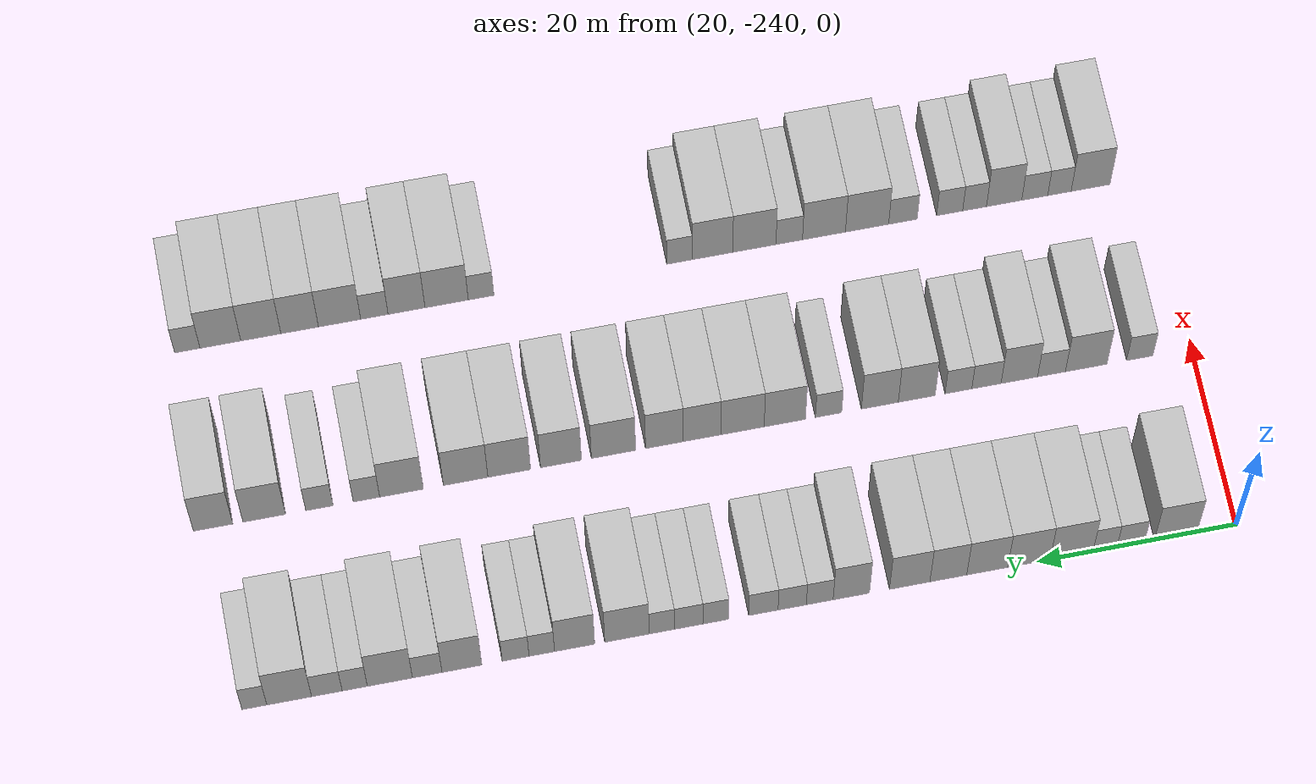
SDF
<sdf version="1.6">
 <world name="default">
  <model name="building_1">
   <static>1</static>
   <pose>25.0000 -233.8589 0 0.000000 0.000000 0.000000</pose>
   <link name="link">
    <pose>0 0 4.50 0 0 0</pose>
    <collision name="collision"><geometry><box><size>10.0000 4.2823 9.0000</size></box></geometry></collision>
    <visual name="visual">
     <cast_shadows>0</cast_shadows>
     <geometry><box><size>10.0000 4.2823 9.0000</size></box></geometry>
     <material>
      <script>
       <uri>model://HANNAS_wall/materials/scripts</uri>
       <uri>model://HANNAS_wall/materials/textures</uri>
       <name>vrc/HANNAS_wall</name>
      </script>
     </material>
    </visual>
   </link>
  </model>
  <model name="building_2">
   <static>1</static>
   <pose>25.0000 -229.3313 0 0.000000 0.000000 0.000000</pose>
   <link name="link">
    <pose>0 0 3.00 0 0 0</pose>
    <collision name="collision"><geometry><box><size>10.0000 2.7728 6.0000</size></box></geometry></collision>
    <visual name="visual">
     <cast_shadows>0</cast_shadows>
     <geometry><box><size>10.0000 2.7728 6.0000</size></box></geometry>
     <material>
      <script>
       <uri>model://HANNAS_wall/materials/scripts</uri>
       <uri>model://HANNAS_wall/materials/textures</uri>
       <name>vrc/HANNAS_wall</name>
      </script>
     </material>
    </visual>
   </link>
  </model>
  <model name="building_3">
   <static>1</static>
   <pose>25.0000 -226.7436 0 0.000000 0.000000 0.000000</pose>
   <link name="link">
    <pose>0 0 3.00 0 0 0</pose>
    <collision name="collision"><geometry><box><size>10.0000 2.4027 6.0000</size></box></geometry></collision>
    <visual name="visual">
     <cast_shadows>0</cast_shadows>
     <geometry><box><size>10.0000 2.4027 6.0000</size></box></geometry>
     <material>
      <script>
       <uri>model://HANNAS_wall/materials/scripts</uri>
       <uri>model://HANNAS_wall/materials/textures</uri>
       <name>vrc/HANNAS_wall</name>
      </script>
     </material>
    </visual>
   </link>
  </model>
  <model name="building_4">
   <static>1</static>
   <pose>25.0000 -223.3884 0 0.000000 0.000000 0.000000</pose>
   <link name="link">
    <pose>0 0 4.50 0 0 0</pose>
    <collision name="collision"><geometry><box><size>10.0000 4.3077 9.0000</size></box></geometry></collision>
    <visual name="visual">
     <cast_shadows>0</cast_shadows>
     <geometry><box><size>10.0000 4.3077 9.0000</size></box></geometry>
     <material>
      <script>
       <uri>model://HANNAS_wall/materials/scripts</uri>
       <uri>model://HANNAS_wall/materials/textures</uri>
       <name>vrc/HANNAS_wall</name>
      </script>
     </material>
    </visual>
   </link>
  </model>
  <model name="building_5">
   <static>1</static>
   <pose>25.0000 -219.1141 0 0.000000 0.000000 0.000000</pose>
   <link name="link">
    <pose>0 0 4.50 0 0 0</pose>
    <collision name="collision"><geometry><box><size>10.0000 4.2409 9.0000</size></box></geometry></collision>
    <visual name="visual">
     <cast_shadows>0</cast_shadows>
     <geometry><box><size>10.0000 4.2409 9.0000</size></box></geometry>
     <material>
      <script>
       <uri>model://HANNAS_wall/materials/scripts</uri>
       <uri>model://HANNAS_wall/materials/textures</uri>
       <name>vrc/HANNAS_wall</name>
      </script>
     </material>
    </visual>
   </link>
  </model>
  <model name="building_6">
   <static>1</static>
   <pose>25.0000 -214.9494 0 0.000000 0.000000 0.000000</pose>
   <link name="link">
    <pose>0 0 4.50 0 0 0</pose>
    <collision name="collision"><geometry><box><size>10.0000 4.0884 9.0000</size></box></geometry></collision>
    <visual name="visual">
     <cast_shadows>0</cast_shadows>
     <geometry><box><size>10.0000 4.0884 9.0000</size></box></geometry>
     <material>
      <script>
       <uri>model://HANNAS_wall/materials/scripts</uri>
       <uri>model://HANNAS_wall/materials/textures</uri>
       <name>vrc/HANNAS_wall</name>
      </script>
     </material>
    </visual>
   </link>
  </model>
  <model name="building_7">
   <static>1</static>
   <pose>25.0000 -211.0635 0 0.000000 0.000000 0.000000</pose>
   <link name="link">
    <pose>0 0 4.50 0 0 0</pose>
    <collision name="collision"><geometry><box><size>10.0000 3.6835 9.0000</size></box></geometry></collision>
    <visual name="visual">
     <cast_shadows>0</cast_shadows>
     <geometry><box><size>10.0000 3.6835 9.0000</size></box></geometry>
     <material>
      <script>
       <uri>model://HANNAS_wall/materials/scripts</uri>
       <uri>model://HANNAS_wall/materials/textures</uri>
       <name>vrc/HANNAS_wall</name>
      </script>
     </material>
    </visual>
   </link>
  </model>
  <model name="building_8">
   <static>1</static>
   <pose>25.0000 -207.2056 0 0.000000 0.000000 0.000000</pose>
   <link name="link">
    <pose>0 0 4.50 0 0 0</pose>
    <collision name="collision"><geometry><box><size>10.0000 4.0324 9.0000</size></box></geometry></collision>
    <visual name="visual">
     <cast_shadows>0</cast_shadows>
     <geometry><box><size>10.0000 4.0324 9.0000</size></box></geometry>
     <material>
      <script>
       <uri>model://HANNAS_wall/materials/scripts</uri>
       <uri>model://HANNAS_wall/materials/textures</uri>
       <name>vrc/HANNAS_wall</name>
      </script>
     </material>
    </visual>
   </link>
  </model>
  <model name="building_9">
   <static>1</static>
   <pose>25.0000 -201.3807 0 0.000000 0.000000 0.000000</pose>
   <link name="link">
    <pose>0 0 4.50 0 0 0</pose>
    <collision name="collision"><geometry><box><size>10.0000 3.6173 9.0000</size></box></geometry></collision>
    <visual name="visual">
     <cast_shadows>0</cast_shadows>
     <geometry><box><size>10.0000 3.6173 9.0000</size></box></geometry>
     <material>
      <script>
       <uri>model://HANNAS_wall/materials/scripts</uri>
       <uri>model://HANNAS_wall/materials/textures</uri>
       <name>vrc/HANNAS_wall</name>
      </script>
     </material>
    </visual>
   </link>
  </model>
  <model name="building_10">
   <static>1</static>
   <pose>25.0000 -198.2366 0 0.000000 0.000000 0.000000</pose>
   <link name="link">
    <pose>0 0 3.00 0 0 0</pose>
    <collision name="collision"><geometry><box><size>10.0000 2.6708 6.0000</size></box></geometry></collision>
    <visual name="visual">
     <cast_shadows>0</cast_shadows>
     <geometry><box><size>10.0000 2.6708 6.0000</size></box></geometry>
     <material>
      <script>
       <uri>model://HANNAS_wall/materials/scripts</uri>
       <uri>model://HANNAS_wall/materials/textures</uri>
       <name>vrc/HANNAS_wall</name>
      </script>
     </material>
    </visual>
   </link>
  </model>
  <model name="building_11">
   <static>1</static>
   <pose>25.0000 -195.4978 0 0.000000 0.000000 0.000000</pose>
   <link name="link">
    <pose>0 0 3.00 0 0 0</pose>
    <collision name="collision"><geometry><box><size>10.0000 2.8070 6.0000</size></box></geometry></collision>
    <visual name="visual">
     <cast_shadows>0</cast_shadows>
     <geometry><box><size>10.0000 2.8070 6.0000</size></box></geometry>
     <material>
      <script>
       <uri>model://HANNAS_wall/materials/scripts</uri>
       <uri>model://HANNAS_wall/materials/textures</uri>
       <name>vrc/HANNAS_wall</name>
      </script>
     </material>
    </visual>
   </link>
  </model>
  <model name="building_12">
   <static>1</static>
   <pose>25.0000 -192.6402 0 0.000000 0.000000 0.000000</pose>
   <link name="link">
    <pose>0 0 3.00 0 0 0</pose>
    <collision name="collision"><geometry><box><size>10.0000 2.9082 6.0000</size></box></geometry></collision>
    <visual name="visual">
     <cast_shadows>0</cast_shadows>
     <geometry><box><size>10.0000 2.9082 6.0000</size></box></geometry>
     <material>
      <script>
       <uri>model://HANNAS_wall/materials/scripts</uri>
       <uri>model://HANNAS_wall/materials/textures</uri>
       <name>vrc/HANNAS_wall</name>
      </script>
     </material>
    </visual>
   </link>
  </model>
  <model name="building_13">
   <static>1</static>
   <pose>25.0000 -187.9117 0 0.000000 0.000000 0.000000</pose>
   <link name="link">
    <pose>0 0 3.00 0 0 0</pose>
    <collision name="collision"><geometry><box><size>10.0000 2.5488 6.0000</size></box></geometry></collision>
    <visual name="visual">
     <cast_shadows>0</cast_shadows>
     <geometry><box><size>10.0000 2.5488 6.0000</size></box></geometry>
     <material>
      <script>
       <uri>model://HANNAS_wall/materials/scripts</uri>
       <uri>model://HANNAS_wall/materials/textures</uri>
       <name>vrc/HANNAS_wall</name>
      </script>
     </material>
    </visual>
   </link>
  </model>
  <model name="building_14">
   <static>1</static>
   <pose>25.0000 -185.2370 0 0.000000 0.000000 0.000000</pose>
   <link name="link">
    <pose>0 0 3.00 0 0 0</pose>
    <collision name="collision"><geometry><box><size>10.0000 2.8006 6.0000</size></box></geometry></collision>
    <visual name="visual">
     <cast_shadows>0</cast_shadows>
     <geometry><box><size>10.0000 2.8006 6.0000</size></box></geometry>
     <material>
      <script>
       <uri>model://HANNAS_wall/materials/scripts</uri>
       <uri>model://HANNAS_wall/materials/textures</uri>
       <name>vrc/HANNAS_wall</name>
      </script>
     </material>
    </visual>
   </link>
  </model>
  <model name="building_15">
   <static>1</static>
   <pose>25.0000 -182.5791 0 0.000000 0.000000 0.000000</pose>
   <link name="link">
    <pose>0 0 3.00 0 0 0</pose>
    <collision name="collision"><geometry><box><size>10.0000 2.5152 6.0000</size></box></geometry></collision>
    <visual name="visual">
     <cast_shadows>0</cast_shadows>
     <geometry><box><size>10.0000 2.5152 6.0000</size></box></geometry>
     <material>
      <script>
       <uri>model://HANNAS_wall/materials/scripts</uri>
       <uri>model://HANNAS_wall/materials/textures</uri>
       <name>vrc/HANNAS_wall</name>
      </script>
     </material>
    </visual>
   </link>
  </model>
  <model name="building_16">
   <static>1</static>
   <pose>25.0000 -179.1273 0 0.000000 0.000000 0.000000</pose>
   <link name="link">
    <pose>0 0 4.50 0 0 0</pose>
    <collision name="collision"><geometry><box><size>10.0000 4.3885 9.0000</size></box></geometry></collision>
    <visual name="visual">
     <cast_shadows>0</cast_shadows>
     <geometry><box><size>10.0000 4.3885 9.0000</size></box></geometry>
     <material>
      <script>
       <uri>model://HANNAS_wall/materials/scripts</uri>
       <uri>model://HANNAS_wall/materials/textures</uri>
       <name>vrc/HANNAS_wall</name>
      </script>
     </material>
    </visual>
   </link>
  </model>
  <model name="building_17">
   <static>1</static>
   <pose>25.0000 -173.9559 0 0.000000 0.000000 0.000000</pose>
   <link name="link">
    <pose>0 0 4.50 0 0 0</pose>
    <collision name="collision"><geometry><box><size>10.0000 3.9544 9.0000</size></box></geometry></collision>
    <visual name="visual">
     <cast_shadows>0</cast_shadows>
     <geometry><box><size>10.0000 3.9544 9.0000</size></box></geometry>
     <material>
      <script>
       <uri>model://HANNAS_wall/materials/scripts</uri>
       <uri>model://HANNAS_wall/materials/textures</uri>
       <name>vrc/HANNAS_wall</name>
      </script>
     </material>
    </visual>
   </link>
  </model>
  <model name="building_18">
   <static>1</static>
   <pose>25.0000 -170.7183 0 0.000000 0.000000 0.000000</pose>
   <link name="link">
    <pose>0 0 3.00 0 0 0</pose>
    <collision name="collision"><geometry><box><size>10.0000 2.5207 6.0000</size></box></geometry></collision>
    <visual name="visual">
     <cast_shadows>0</cast_shadows>
     <geometry><box><size>10.0000 2.5207 6.0000</size></box></geometry>
     <material>
      <script>
       <uri>model://HANNAS_wall/materials/scripts</uri>
       <uri>model://HANNAS_wall/materials/textures</uri>
       <name>vrc/HANNAS_wall</name>
      </script>
     </material>
    </visual>
   </link>
  </model>
  <model name="building_19">
   <static>1</static>
   <pose>25.0000 -168.1359 0 0.000000 0.000000 0.000000</pose>
   <link name="link">
    <pose>0 0 3.00 0 0 0</pose>
    <collision name="collision"><geometry><box><size>10.0000 2.6441 6.0000</size></box></geometry></collision>
    <visual name="visual">
     <cast_shadows>0</cast_shadows>
     <geometry><box><size>10.0000 2.6441 6.0000</size></box></geometry>
     <material>
      <script>
       <uri>model://HANNAS_wall/materials/scripts</uri>
       <uri>model://HANNAS_wall/materials/textures</uri>
       <name>vrc/HANNAS_wall</name>
      </script>
     </material>
    </visual>
   </link>
  </model>
  <model name="building_20">
   <static>1</static>
   <pose>25.0000 -162.8508 0 0.000000 0.000000 0.000000</pose>
   <link name="link">
    <pose>0 0 4.50 0 0 0</pose>
    <collision name="collision"><geometry><box><size>10.0000 3.9261 9.0000</size></box></geometry></collision>
    <visual name="visual">
     <cast_shadows>0</cast_shadows>
     <geometry><box><size>10.0000 3.9261 9.0000</size></box></geometry>
     <material>
      <script>
       <uri>model://HANNAS_wall/materials/scripts</uri>
       <uri>model://HANNAS_wall/materials/textures</uri>
       <name>vrc/HANNAS_wall</name>
      </script>
     </material>
    </visual>
   </link>
  </model>
  <model name="building_21">
   <static>1</static>
   <pose>25.0000 -159.4385 0 0.000000 0.000000 0.000000</pose>
   <link name="link">
    <pose>0 0 3.00 0 0 0</pose>
    <collision name="collision"><geometry><box><size>10.0000 2.8985 6.0000</size></box></geometry></collision>
    <visual name="visual">
     <cast_shadows>0</cast_shadows>
     <geometry><box><size>10.0000 2.8985 6.0000</size></box></geometry>
     <material>
      <script>
       <uri>model://HANNAS_wall/materials/scripts</uri>
       <uri>model://HANNAS_wall/materials/textures</uri>
       <name>vrc/HANNAS_wall</name>
      </script>
     </material>
    </visual>
   </link>
  </model>
  <model name="building_22">
   <static>1</static>
   <pose>25.0000 -155.7770 0 0.000000 0.000000 0.000000</pose>
   <link name="link">
    <pose>0 0 4.50 0 0 0</pose>
    <collision name="collision"><geometry><box><size>10.0000 4.4245 9.0000</size></box></geometry></collision>
    <visual name="visual">
     <cast_shadows>0</cast_shadows>
     <geometry><box><size>10.0000 4.4245 9.0000</size></box></geometry>
     <material>
      <script>
       <uri>model://HANNAS_wall/materials/scripts</uri>
       <uri>model://HANNAS_wall/materials/textures</uri>
       <name>vrc/HANNAS_wall</name>
      </script>
     </material>
    </visual>
   </link>
  </model>
  <model name="building_23">
   <static>1</static>
   <pose>25.0000 -152.3275 0 0.000000 0.000000 0.000000</pose>
   <link name="link">
    <pose>0 0 3.00 0 0 0</pose>
    <collision name="collision"><geometry><box><size>10.0000 2.4743 6.0000</size></box></geometry></collision>
    <visual name="visual">
     <cast_shadows>0</cast_shadows>
     <geometry><box><size>10.0000 2.4743 6.0000</size></box></geometry>
     <material>
      <script>
       <uri>model://HANNAS_wall/materials/scripts</uri>
       <uri>model://HANNAS_wall/materials/textures</uri>
       <name>vrc/HANNAS_wall</name>
      </script>
     </material>
    </visual>
   </link>
  </model>
  <model name="building_24">
   <static>1</static>
   <pose>25.0000 -149.5923 0 0.000000 0.000000 0.000000</pose>
   <link name="link">
    <pose>0 0 3.00 0 0 0</pose>
    <collision name="collision"><geometry><box><size>10.0000 2.9961 6.0000</size></box></geometry></collision>
    <visual name="visual">
     <cast_shadows>0</cast_shadows>
     <geometry><box><size>10.0000 2.9961 6.0000</size></box></geometry>
     <material>
      <script>
       <uri>model://HANNAS_wall/materials/scripts</uri>
       <uri>model://HANNAS_wall/materials/textures</uri>
       <name>vrc/HANNAS_wall</name>
      </script>
     </material>
    </visual>
   </link>
  </model>
  <model name="building_25">
   <static>1</static>
   <pose>25.0000 -145.9034 0 0.000000 0.000000 0.000000</pose>
   <link name="link">
    <pose>0 0 4.50 0 0 0</pose>
    <collision name="collision"><geometry><box><size>10.0000 4.3817 9.0000</size></box></geometry></collision>
    <visual name="visual">
     <cast_shadows>0</cast_shadows>
     <geometry><box><size>10.0000 4.3817 9.0000</size></box></geometry>
     <material>
      <script>
       <uri>model://HANNAS_wall/materials/scripts</uri>
       <uri>model://HANNAS_wall/materials/textures</uri>
       <name>vrc/HANNAS_wall</name>
      </script>
     </material>
    </visual>
   </link>
  </model>
  <model name="building_26">
   <static>1</static>
   <pose>25.0000 -142.4988 0 0.000000 0.000000 0.000000</pose>
   <link name="link">
    <pose>0 0 3.00 0 0 0</pose>
    <collision name="collision"><geometry><box><size>10.0000 2.4275 6.0000</size></box></geometry></collision>
    <visual name="visual">
     <cast_shadows>0</cast_shadows>
     <geometry><box><size>10.0000 2.4275 6.0000</size></box></geometry>
     <material>
      <script>
       <uri>model://HANNAS_wall/materials/scripts</uri>
       <uri>model://HANNAS_wall/materials/textures</uri>
       <name>vrc/HANNAS_wall</name>
      </script>
     </material>
    </visual>
   </link>
  </model>
  <model name="building_128">
   <static>1</static>
   <pose>44.0000 -234.6585 0 0.000000 0.000000 0.000000</pose>
   <link name="link">
    <pose>0 0 3.00 0 0 0</pose>
    <collision name="collision"><geometry><box><size>10.0000 2.6829 6.0000</size></box></geometry></collision>
    <visual name="visual">
     <cast_shadows>0</cast_shadows>
     <geometry><box><size>10.0000 2.6829 6.0000</size></box></geometry>
     <material>
      <script>
       <uri>model://HANNAS_wall/materials/scripts</uri>
       <uri>model://HANNAS_wall/materials/textures</uri>
       <name>vrc/HANNAS_wall</name>
      </script>
     </material>
    </visual>
   </link>
  </model>
  <model name="building_129">
   <static>1</static>
   <pose>44.0000 -229.2019 0 0.000000 0.000000 0.000000</pose>
   <link name="link">
    <pose>0 0 4.50 0 0 0</pose>
    <collision name="collision"><geometry><box><size>10.0000 4.2305 9.0000</size></box></geometry></collision>
    <visual name="visual">
     <cast_shadows>0</cast_shadows>
     <geometry><box><size>10.0000 4.2305 9.0000</size></box></geometry>
     <material>
      <script>
       <uri>model://HANNAS_wall/materials/scripts</uri>
       <uri>model://HANNAS_wall/materials/textures</uri>
       <name>vrc/HANNAS_wall</name>
      </script>
     </material>
    </visual>
   </link>
  </model>
  <model name="building_130">
   <static>1</static>
   <pose>44.0000 -225.6706 0 0.000000 0.000000 0.000000</pose>
   <link name="link">
    <pose>0 0 3.00 0 0 0</pose>
    <collision name="collision"><geometry><box><size>10.0000 2.8320 6.0000</size></box></geometry></collision>
    <visual name="visual">
     <cast_shadows>0</cast_shadows>
     <geometry><box><size>10.0000 2.8320 6.0000</size></box></geometry>
     <material>
      <script>
       <uri>model://HANNAS_wall/materials/scripts</uri>
       <uri>model://HANNAS_wall/materials/textures</uri>
       <name>vrc/HANNAS_wall</name>
      </script>
     </material>
    </visual>
   </link>
  </model>
  <model name="building_131">
   <static>1</static>
   <pose>44.0000 -222.3912 0 0.000000 0.000000 0.000000</pose>
   <link name="link">
    <pose>0 0 4.50 0 0 0</pose>
    <collision name="collision"><geometry><box><size>10.0000 3.7268 9.0000</size></box></geometry></collision>
    <visual name="visual">
     <cast_shadows>0</cast_shadows>
     <geometry><box><size>10.0000 3.7268 9.0000</size></box></geometry>
     <material>
      <script>
       <uri>model://HANNAS_wall/materials/scripts</uri>
       <uri>model://HANNAS_wall/materials/textures</uri>
       <name>vrc/HANNAS_wall</name>
      </script>
     </material>
    </visual>
   </link>
  </model>
  <model name="building_132">
   <static>1</static>
   <pose>44.0000 -219.0440 0 0.000000 0.000000 0.000000</pose>
   <link name="link">
    <pose>0 0 3.00 0 0 0</pose>
    <collision name="collision"><geometry><box><size>10.0000 2.9677 6.0000</size></box></geometry></collision>
    <visual name="visual">
     <cast_shadows>0</cast_shadows>
     <geometry><box><size>10.0000 2.9677 6.0000</size></box></geometry>
     <material>
      <script>
       <uri>model://HANNAS_wall/materials/scripts</uri>
       <uri>model://HANNAS_wall/materials/textures</uri>
       <name>vrc/HANNAS_wall</name>
      </script>
     </material>
    </visual>
   </link>
  </model>
  <model name="building_133">
   <static>1</static>
   <pose>44.0000 -216.2031 0 0.000000 0.000000 0.000000</pose>
   <link name="link">
    <pose>0 0 3.00 0 0 0</pose>
    <collision name="collision"><geometry><box><size>10.0000 2.7142 6.0000</size></box></geometry></collision>
    <visual name="visual">
     <cast_shadows>0</cast_shadows>
     <geometry><box><size>10.0000 2.7142 6.0000</size></box></geometry>
     <material>
      <script>
       <uri>model://HANNAS_wall/materials/scripts</uri>
       <uri>model://HANNAS_wall/materials/textures</uri>
       <name>vrc/HANNAS_wall</name>
      </script>
     </material>
    </visual>
   </link>
  </model>
  <model name="building_134">
   <static>1</static>
   <pose>44.0000 -211.9766 0 0.000000 0.000000 0.000000</pose>
   <link name="link">
    <pose>0 0 4.50 0 0 0</pose>
    <collision name="collision"><geometry><box><size>10.0000 3.7388 9.0000</size></box></geometry></collision>
    <visual name="visual">
     <cast_shadows>0</cast_shadows>
     <geometry><box><size>10.0000 3.7388 9.0000</size></box></geometry>
     <material>
      <script>
       <uri>model://HANNAS_wall/materials/scripts</uri>
       <uri>model://HANNAS_wall/materials/textures</uri>
       <name>vrc/HANNAS_wall</name>
      </script>
     </material>
    </visual>
   </link>
  </model>
  <model name="building_135">
   <static>1</static>
   <pose>44.0000 -208.2393 0 0.000000 0.000000 0.000000</pose>
   <link name="link">
    <pose>0 0 4.50 0 0 0</pose>
    <collision name="collision"><geometry><box><size>10.0000 3.7358 9.0000</size></box></geometry></collision>
    <visual name="visual">
     <cast_shadows>0</cast_shadows>
     <geometry><box><size>10.0000 3.7358 9.0000</size></box></geometry>
     <material>
      <script>
       <uri>model://HANNAS_wall/materials/scripts</uri>
       <uri>model://HANNAS_wall/materials/textures</uri>
       <name>vrc/HANNAS_wall</name>
      </script>
     </material>
    </visual>
   </link>
  </model>
  <model name="building_136">
   <static>1</static>
   <pose>44.0000 -203.0426 0 0.000000 0.000000 0.000000</pose>
   <link name="link">
    <pose>0 0 3.00 0 0 0</pose>
    <collision name="collision"><geometry><box><size>10.0000 2.6577 6.0000</size></box></geometry></collision>
    <visual name="visual">
     <cast_shadows>0</cast_shadows>
     <geometry><box><size>10.0000 2.6577 6.0000</size></box></geometry>
     <material>
      <script>
       <uri>model://HANNAS_wall/materials/scripts</uri>
       <uri>model://HANNAS_wall/materials/textures</uri>
       <name>vrc/HANNAS_wall</name>
      </script>
     </material>
    </visual>
   </link>
  </model>
  <model name="building_137">
   <static>1</static>
   <pose>44.0000 -198.6315 0 0.000000 0.000000 0.000000</pose>
   <link name="link">
    <pose>0 0 4.50 0 0 0</pose>
    <collision name="collision"><geometry><box><size>10.0000 4.1644 9.0000</size></box></geometry></collision>
    <visual name="visual">
     <cast_shadows>0</cast_shadows>
     <geometry><box><size>10.0000 4.1644 9.0000</size></box></geometry>
     <material>
      <script>
       <uri>model://HANNAS_wall/materials/scripts</uri>
       <uri>model://HANNAS_wall/materials/textures</uri>
       <name>vrc/HANNAS_wall</name>
      </script>
     </material>
    </visual>
   </link>
  </model>
  <model name="building_138">
   <static>1</static>
   <pose>44.0000 -194.3699 0 0.000000 0.000000 0.000000</pose>
   <link name="link">
    <pose>0 0 4.50 0 0 0</pose>
    <collision name="collision"><geometry><box><size>10.0000 4.3588 9.0000</size></box></geometry></collision>
    <visual name="visual">
     <cast_shadows>0</cast_shadows>
     <geometry><box><size>10.0000 4.3588 9.0000</size></box></geometry>
     <material>
      <script>
       <uri>model://HANNAS_wall/materials/scripts</uri>
       <uri>model://HANNAS_wall/materials/textures</uri>
       <name>vrc/HANNAS_wall</name>
      </script>
     </material>
    </visual>
   </link>
  </model>
  <model name="building_139">
   <static>1</static>
   <pose>44.0000 -190.2961 0 0.000000 0.000000 0.000000</pose>
   <link name="link">
    <pose>0 0 4.50 0 0 0</pose>
    <collision name="collision"><geometry><box><size>10.0000 3.7888 9.0000</size></box></geometry></collision>
    <visual name="visual">
     <cast_shadows>0</cast_shadows>
     <geometry><box><size>10.0000 3.7888 9.0000</size></box></geometry>
     <material>
      <script>
       <uri>model://HANNAS_wall/materials/scripts</uri>
       <uri>model://HANNAS_wall/materials/textures</uri>
       <name>vrc/HANNAS_wall</name>
      </script>
     </material>
    </visual>
   </link>
  </model>
  <model name="building_140">
   <static>1</static>
   <pose>44.0000 -186.5040 0 0.000000 0.000000 0.000000</pose>
   <link name="link">
    <pose>0 0 4.50 0 0 0</pose>
    <collision name="collision"><geometry><box><size>10.0000 3.7954 9.0000</size></box></geometry></collision>
    <visual name="visual">
     <cast_shadows>0</cast_shadows>
     <geometry><box><size>10.0000 3.7954 9.0000</size></box></geometry>
     <material>
      <script>
       <uri>model://HANNAS_wall/materials/scripts</uri>
       <uri>model://HANNAS_wall/materials/textures</uri>
       <name>vrc/HANNAS_wall</name>
      </script>
     </material>
    </visual>
   </link>
  </model>
  <model name="building_141">
   <static>1</static>
   <pose>44.0000 -181.3888 0 0.000000 0.000000 0.000000</pose>
   <link name="link">
    <pose>0 0 4.50 0 0 0</pose>
    <collision name="collision"><geometry><box><size>10.0000 4.4349 9.0000</size></box></geometry></collision>
    <visual name="visual">
     <cast_shadows>0</cast_shadows>
     <geometry><box><size>10.0000 4.4349 9.0000</size></box></geometry>
     <material>
      <script>
       <uri>model://HANNAS_wall/materials/scripts</uri>
       <uri>model://HANNAS_wall/materials/textures</uri>
       <name>vrc/HANNAS_wall</name>
      </script>
     </material>
    </visual>
   </link>
  </model>
  <model name="building_142">
   <static>1</static>
   <pose>44.0000 -176.1224 0 0.000000 0.000000 0.000000</pose>
   <link name="link">
    <pose>0 0 4.50 0 0 0</pose>
    <collision name="collision"><geometry><box><size>10.0000 4.0980 9.0000</size></box></geometry></collision>
    <visual name="visual">
     <cast_shadows>0</cast_shadows>
     <geometry><box><size>10.0000 4.0980 9.0000</size></box></geometry>
     <material>
      <script>
       <uri>model://HANNAS_wall/materials/scripts</uri>
       <uri>model://HANNAS_wall/materials/textures</uri>
       <name>vrc/HANNAS_wall</name>
      </script>
     </material>
    </visual>
   </link>
  </model>
  <model name="building_143">
   <static>1</static>
   <pose>44.0000 -170.9402 0 0.000000 0.000000 0.000000</pose>
   <link name="link">
    <pose>0 0 4.50 0 0 0</pose>
    <collision name="collision"><geometry><box><size>10.0000 4.2664 9.0000</size></box></geometry></collision>
    <visual name="visual">
     <cast_shadows>0</cast_shadows>
     <geometry><box><size>10.0000 4.2664 9.0000</size></box></geometry>
     <material>
      <script>
       <uri>model://HANNAS_wall/materials/scripts</uri>
       <uri>model://HANNAS_wall/materials/textures</uri>
       <name>vrc/HANNAS_wall</name>
      </script>
     </material>
    </visual>
   </link>
  </model>
  <model name="building_144">
   <static>1</static>
   <pose>44.0000 -166.5835 0 0.000000 0.000000 0.000000</pose>
   <link name="link">
    <pose>0 0 4.50 0 0 0</pose>
    <collision name="collision"><geometry><box><size>10.0000 4.4469 9.0000</size></box></geometry></collision>
    <visual name="visual">
     <cast_shadows>0</cast_shadows>
     <geometry><box><size>10.0000 4.4469 9.0000</size></box></geometry>
     <material>
      <script>
       <uri>model://HANNAS_wall/materials/scripts</uri>
       <uri>model://HANNAS_wall/materials/textures</uri>
       <name>vrc/HANNAS_wall</name>
      </script>
     </material>
    </visual>
   </link>
  </model>
  <model name="building_145">
   <static>1</static>
   <pose>44.0000 -160.1789 0 0.000000 0.000000 0.000000</pose>
   <link name="link">
    <pose>0 0 4.50 0 0 0</pose>
    <collision name="collision"><geometry><box><size>10.0000 4.3624 9.0000</size></box></geometry></collision>
    <visual name="visual">
     <cast_shadows>0</cast_shadows>
     <geometry><box><size>10.0000 4.3624 9.0000</size></box></geometry>
     <material>
      <script>
       <uri>model://HANNAS_wall/materials/scripts</uri>
       <uri>model://HANNAS_wall/materials/textures</uri>
       <name>vrc/HANNAS_wall</name>
      </script>
     </material>
    </visual>
   </link>
  </model>
  <model name="building_146">
   <static>1</static>
   <pose>44.0000 -156.6819 0 0.000000 0.000000 0.000000</pose>
   <link name="link">
    <pose>0 0 3.00 0 0 0</pose>
    <collision name="collision"><geometry><box><size>10.0000 2.6316 6.0000</size></box></geometry></collision>
    <visual name="visual">
     <cast_shadows>0</cast_shadows>
     <geometry><box><size>10.0000 2.6316 6.0000</size></box></geometry>
     <material>
      <script>
       <uri>model://HANNAS_wall/materials/scripts</uri>
       <uri>model://HANNAS_wall/materials/textures</uri>
       <name>vrc/HANNAS_wall</name>
      </script>
     </material>
    </visual>
   </link>
  </model>
  <model name="building_147">
   <static>1</static>
   <pose>44.0000 -152.0036 0 0.000000 0.000000 0.000000</pose>
   <link name="link">
    <pose>0 0 3.00 0 0 0</pose>
    <collision name="collision"><geometry><box><size>10.0000 2.7249 6.0000</size></box></geometry></collision>
    <visual name="visual">
     <cast_shadows>0</cast_shadows>
     <geometry><box><size>10.0000 2.7249 6.0000</size></box></geometry>
     <material>
      <script>
       <uri>model://HANNAS_wall/materials/scripts</uri>
       <uri>model://HANNAS_wall/materials/textures</uri>
       <name>vrc/HANNAS_wall</name>
      </script>
     </material>
    </visual>
   </link>
  </model>
  <model name="building_148">
   <static>1</static>
   <pose>44.0000 -146.5211 0 0.000000 0.000000 0.000000</pose>
   <link name="link">
    <pose>0 0 4.50 0 0 0</pose>
    <collision name="collision"><geometry><box><size>10.0000 4.2401 9.0000</size></box></geometry></collision>
    <visual name="visual">
     <cast_shadows>0</cast_shadows>
     <geometry><box><size>10.0000 4.2401 9.0000</size></box></geometry>
     <material>
      <script>
       <uri>model://HANNAS_wall/materials/scripts</uri>
       <uri>model://HANNAS_wall/materials/textures</uri>
       <name>vrc/HANNAS_wall</name>
      </script>
     </material>
    </visual>
   </link>
  </model>
  <model name="building_149">
   <static>1</static>
   <pose>44.0000 -141.4464 0 0.000000 0.000000 0.000000</pose>
   <link name="link">
    <pose>0 0 4.50 0 0 0</pose>
    <collision name="collision"><geometry><box><size>10.0000 3.9095 9.0000</size></box></geometry></collision>
    <visual name="visual">
     <cast_shadows>0</cast_shadows>
     <geometry><box><size>10.0000 3.9095 9.0000</size></box></geometry>
     <material>
      <script>
       <uri>model://HANNAS_wall/materials/scripts</uri>
       <uri>model://HANNAS_wall/materials/textures</uri>
       <name>vrc/HANNAS_wall</name>
      </script>
     </material>
    </visual>
   </link>
  </model>
  <model name="building_241">
   <static>1</static>
   <pose>63.0000 -233.9880 0 0.000000 0.000000 0.000000</pose>
   <link name="link">
    <pose>0 0 4.50 0 0 0</pose>
    <collision name="collision"><geometry><box><size>10.0000 4.0240 9.0000</size></box></geometry></collision>
    <visual name="visual">
     <cast_shadows>0</cast_shadows>
     <geometry><box><size>10.0000 4.0240 9.0000</size></box></geometry>
     <material>
      <script>
       <uri>model://HANNAS_wall/materials/scripts</uri>
       <uri>model://HANNAS_wall/materials/textures</uri>
       <name>vrc/HANNAS_wall</name>
      </script>
     </material>
    </visual>
   </link>
  </model>
  <model name="building_242">
   <static>1</static>
   <pose>63.0000 -230.7649 0 0.000000 0.000000 0.000000</pose>
   <link name="link">
    <pose>0 0 3.00 0 0 0</pose>
    <collision name="collision"><geometry><box><size>10.0000 2.4222 6.0000</size></box></geometry></collision>
    <visual name="visual">
     <cast_shadows>0</cast_shadows>
     <geometry><box><size>10.0000 2.4222 6.0000</size></box></geometry>
     <material>
      <script>
       <uri>model://HANNAS_wall/materials/scripts</uri>
       <uri>model://HANNAS_wall/materials/textures</uri>
       <name>vrc/HANNAS_wall</name>
      </script>
     </material>
    </visual>
   </link>
  </model>
  <model name="building_243">
   <static>1</static>
   <pose>63.0000 -228.2106 0 0.000000 0.000000 0.000000</pose>
   <link name="link">
    <pose>0 0 3.00 0 0 0</pose>
    <collision name="collision"><geometry><box><size>10.0000 2.6865 6.0000</size></box></geometry></collision>
    <visual name="visual">
     <cast_shadows>0</cast_shadows>
     <geometry><box><size>10.0000 2.6865 6.0000</size></box></geometry>
     <material>
      <script>
       <uri>model://HANNAS_wall/materials/scripts</uri>
       <uri>model://HANNAS_wall/materials/textures</uri>
       <name>vrc/HANNAS_wall</name>
      </script>
     </material>
    </visual>
   </link>
  </model>
  <model name="building_244">
   <static>1</static>
   <pose>63.0000 -225.0476 0 0.000000 0.000000 0.000000</pose>
   <link name="link">
    <pose>0 0 4.50 0 0 0</pose>
    <collision name="collision"><geometry><box><size>10.0000 3.6395 9.0000</size></box></geometry></collision>
    <visual name="visual">
     <cast_shadows>0</cast_shadows>
     <geometry><box><size>10.0000 3.6395 9.0000</size></box></geometry>
     <material>
      <script>
       <uri>model://HANNAS_wall/materials/scripts</uri>
       <uri>model://HANNAS_wall/materials/textures</uri>
       <name>vrc/HANNAS_wall</name>
      </script>
     </material>
    </visual>
   </link>
  </model>
  <model name="building_245">
   <static>1</static>
   <pose>63.0000 -222.0026 0 0.000000 0.000000 0.000000</pose>
   <link name="link">
    <pose>0 0 3.00 0 0 0</pose>
    <collision name="collision"><geometry><box><size>10.0000 2.4507 6.0000</size></box></geometry></collision>
    <visual name="visual">
     <cast_shadows>0</cast_shadows>
     <geometry><box><size>10.0000 2.4507 6.0000</size></box></geometry>
     <material>
      <script>
       <uri>model://HANNAS_wall/materials/scripts</uri>
       <uri>model://HANNAS_wall/materials/textures</uri>
       <name>vrc/HANNAS_wall</name>
      </script>
     </material>
    </visual>
   </link>
  </model>
  <model name="building_246">
   <static>1</static>
   <pose>63.0000 -219.4363 0 0.000000 0.000000 0.000000</pose>
   <link name="link">
    <pose>0 0 3.00 0 0 0</pose>
    <collision name="collision"><geometry><box><size>10.0000 2.6818 6.0000</size></box></geometry></collision>
    <visual name="visual">
     <cast_shadows>0</cast_shadows>
     <geometry><box><size>10.0000 2.6818 6.0000</size></box></geometry>
     <material>
      <script>
       <uri>model://HANNAS_wall/materials/scripts</uri>
       <uri>model://HANNAS_wall/materials/textures</uri>
       <name>vrc/HANNAS_wall</name>
      </script>
     </material>
    </visual>
   </link>
  </model>
  <model name="building_247">
   <static>1</static>
   <pose>63.0000 -214.6268 0 0.000000 0.000000 0.000000</pose>
   <link name="link">
    <pose>0 0 3.00 0 0 0</pose>
    <collision name="collision"><geometry><box><size>10.0000 2.9372 6.0000</size></box></geometry></collision>
    <visual name="visual">
     <cast_shadows>0</cast_shadows>
     <geometry><box><size>10.0000 2.9372 6.0000</size></box></geometry>
     <material>
      <script>
       <uri>model://HANNAS_wall/materials/scripts</uri>
       <uri>model://HANNAS_wall/materials/textures</uri>
       <name>vrc/HANNAS_wall</name>
      </script>
     </material>
    </visual>
   </link>
  </model>
  <model name="building_248">
   <static>1</static>
   <pose>63.0000 -210.9391 0 0.000000 0.000000 0.000000</pose>
   <link name="link">
    <pose>0 0 4.50 0 0 0</pose>
    <collision name="collision"><geometry><box><size>10.0000 4.4383 9.0000</size></box></geometry></collision>
    <visual name="visual">
     <cast_shadows>0</cast_shadows>
     <geometry><box><size>10.0000 4.4383 9.0000</size></box></geometry>
     <material>
      <script>
       <uri>model://HANNAS_wall/materials/scripts</uri>
       <uri>model://HANNAS_wall/materials/textures</uri>
       <name>vrc/HANNAS_wall</name>
      </script>
     </material>
    </visual>
   </link>
  </model>
  <model name="building_249">
   <static>1</static>
   <pose>63.0000 -206.5155 0 0.000000 0.000000 0.000000</pose>
   <link name="link">
    <pose>0 0 4.50 0 0 0</pose>
    <collision name="collision"><geometry><box><size>10.0000 4.4089 9.0000</size></box></geometry></collision>
    <visual name="visual">
     <cast_shadows>0</cast_shadows>
     <geometry><box><size>10.0000 4.4089 9.0000</size></box></geometry>
     <material>
      <script>
       <uri>model://HANNAS_wall/materials/scripts</uri>
       <uri>model://HANNAS_wall/materials/textures</uri>
       <name>vrc/HANNAS_wall</name>
      </script>
     </material>
    </visual>
   </link>
  </model>
  <model name="building_250">
   <static>1</static>
   <pose>63.0000 -202.9487 0 0.000000 0.000000 0.000000</pose>
   <link name="link">
    <pose>0 0 3.00 0 0 0</pose>
    <collision name="collision"><geometry><box><size>10.0000 2.7247 6.0000</size></box></geometry></collision>
    <visual name="visual">
     <cast_shadows>0</cast_shadows>
     <geometry><box><size>10.0000 2.7247 6.0000</size></box></geometry>
     <material>
      <script>
       <uri>model://HANNAS_wall/materials/scripts</uri>
       <uri>model://HANNAS_wall/materials/textures</uri>
       <name>vrc/HANNAS_wall</name>
      </script>
     </material>
    </visual>
   </link>
  </model>
  <model name="building_251">
   <static>1</static>
   <pose>63.0000 -199.3744 0 0.000000 0.000000 0.000000</pose>
   <link name="link">
    <pose>0 0 4.50 0 0 0</pose>
    <collision name="collision"><geometry><box><size>10.0000 4.4240 9.0000</size></box></geometry></collision>
    <visual name="visual">
     <cast_shadows>0</cast_shadows>
     <geometry><box><size>10.0000 4.4240 9.0000</size></box></geometry>
     <material>
      <script>
       <uri>model://HANNAS_wall/materials/scripts</uri>
       <uri>model://HANNAS_wall/materials/textures</uri>
       <name>vrc/HANNAS_wall</name>
      </script>
     </material>
    </visual>
   </link>
  </model>
  <model name="building_252">
   <static>1</static>
   <pose>63.0000 -195.0897 0 0.000000 0.000000 0.000000</pose>
   <link name="link">
    <pose>0 0 4.50 0 0 0</pose>
    <collision name="collision"><geometry><box><size>10.0000 4.1453 9.0000</size></box></geometry></collision>
    <visual name="visual">
     <cast_shadows>0</cast_shadows>
     <geometry><box><size>10.0000 4.1453 9.0000</size></box></geometry>
     <material>
      <script>
       <uri>model://HANNAS_wall/materials/scripts</uri>
       <uri>model://HANNAS_wall/materials/textures</uri>
       <name>vrc/HANNAS_wall</name>
      </script>
     </material>
    </visual>
   </link>
  </model>
  <model name="building_253">
   <static>1</static>
   <pose>63.0000 -191.7169 0 0.000000 0.000000 0.000000</pose>
   <link name="link">
    <pose>0 0 3.00 0 0 0</pose>
    <collision name="collision"><geometry><box><size>10.0000 2.6005 6.0000</size></box></geometry></collision>
    <visual name="visual">
     <cast_shadows>0</cast_shadows>
     <geometry><box><size>10.0000 2.6005 6.0000</size></box></geometry>
     <material>
      <script>
       <uri>model://HANNAS_wall/materials/scripts</uri>
       <uri>model://HANNAS_wall/materials/textures</uri>
       <name>vrc/HANNAS_wall</name>
      </script>
     </material>
    </visual>
   </link>
  </model>
  <model name="building_254">
   <static>1</static>
   <pose>63.0000 -171.5163 0 0.000000 0.000000 0.000000</pose>
   <link name="link">
    <pose>0 0 3.00 0 0 0</pose>
    <collision name="collision"><geometry><box><size>10.0000 2.6002 6.0000</size></box></geometry></collision>
    <visual name="visual">
     <cast_shadows>0</cast_shadows>
     <geometry><box><size>10.0000 2.6002 6.0000</size></box></geometry>
     <material>
      <script>
       <uri>model://HANNAS_wall/materials/scripts</uri>
       <uri>model://HANNAS_wall/materials/textures</uri>
       <name>vrc/HANNAS_wall</name>
      </script>
     </material>
    </visual>
   </link>
  </model>
  <model name="building_255">
   <static>1</static>
   <pose>63.0000 -168.0185 0 0.000000 0.000000 0.000000</pose>
   <link name="link">
    <pose>0 0 4.50 0 0 0</pose>
    <collision name="collision"><geometry><box><size>10.0000 4.3954 9.0000</size></box></geometry></collision>
    <visual name="visual">
     <cast_shadows>0</cast_shadows>
     <geometry><box><size>10.0000 4.3954 9.0000</size></box></geometry>
     <material>
      <script>
       <uri>model://HANNAS_wall/materials/scripts</uri>
       <uri>model://HANNAS_wall/materials/textures</uri>
       <name>vrc/HANNAS_wall</name>
      </script>
     </material>
    </visual>
   </link>
  </model>
  <model name="building_256">
   <static>1</static>
   <pose>63.0000 -163.9526 0 0.000000 0.000000 0.000000</pose>
   <link name="link">
    <pose>0 0 4.50 0 0 0</pose>
    <collision name="collision"><geometry><box><size>10.0000 3.7362 9.0000</size></box></geometry></collision>
    <visual name="visual">
     <cast_shadows>0</cast_shadows>
     <geometry><box><size>10.0000 3.7362 9.0000</size></box></geometry>
     <material>
      <script>
       <uri>model://HANNAS_wall/materials/scripts</uri>
       <uri>model://HANNAS_wall/materials/textures</uri>
       <name>vrc/HANNAS_wall</name>
      </script>
     </material>
    </visual>
   </link>
  </model>
  <model name="building_257">
   <static>1</static>
   <pose>63.0000 -160.6985 0 0.000000 0.000000 0.000000</pose>
   <link name="link">
    <pose>0 0 3.00 0 0 0</pose>
    <collision name="collision"><geometry><box><size>10.0000 2.7720 6.0000</size></box></geometry></collision>
    <visual name="visual">
     <cast_shadows>0</cast_shadows>
     <geometry><box><size>10.0000 2.7720 6.0000</size></box></geometry>
     <material>
      <script>
       <uri>model://HANNAS_wall/materials/scripts</uri>
       <uri>model://HANNAS_wall/materials/textures</uri>
       <name>vrc/HANNAS_wall</name>
      </script>
     </material>
    </visual>
   </link>
  </model>
  <model name="building_258">
   <static>1</static>
   <pose>63.0000 -157.1794 0 0.000000 0.000000 0.000000</pose>
   <link name="link">
    <pose>0 0 4.50 0 0 0</pose>
    <collision name="collision"><geometry><box><size>10.0000 4.2662 9.0000</size></box></geometry></collision>
    <visual name="visual">
     <cast_shadows>0</cast_shadows>
     <geometry><box><size>10.0000 4.2662 9.0000</size></box></geometry>
     <material>
      <script>
       <uri>model://HANNAS_wall/materials/scripts</uri>
       <uri>model://HANNAS_wall/materials/textures</uri>
       <name>vrc/HANNAS_wall</name>
      </script>
     </material>
    </visual>
   </link>
  </model>
  <model name="building_259">
   <static>1</static>
   <pose>63.0000 -153.1495 0 0.000000 0.000000 0.000000</pose>
   <link name="link">
    <pose>0 0 4.50 0 0 0</pose>
    <collision name="collision"><geometry><box><size>10.0000 3.7934 9.0000</size></box></geometry></collision>
    <visual name="visual">
     <cast_shadows>0</cast_shadows>
     <geometry><box><size>10.0000 3.7934 9.0000</size></box></geometry>
     <material>
      <script>
       <uri>model://HANNAS_wall/materials/scripts</uri>
       <uri>model://HANNAS_wall/materials/textures</uri>
       <name>vrc/HANNAS_wall</name>
      </script>
     </material>
    </visual>
   </link>
  </model>
  <model name="building_260">
   <static>1</static>
   <pose>63.0000 -149.2312 0 0.000000 0.000000 0.000000</pose>
   <link name="link">
    <pose>0 0 4.50 0 0 0</pose>
    <collision name="collision"><geometry><box><size>10.0000 4.0433 9.0000</size></box></geometry></collision>
    <visual name="visual">
     <cast_shadows>0</cast_shadows>
     <geometry><box><size>10.0000 4.0433 9.0000</size></box></geometry>
     <material>
      <script>
       <uri>model://HANNAS_wall/materials/scripts</uri>
       <uri>model://HANNAS_wall/materials/textures</uri>
       <name>vrc/HANNAS_wall</name>
      </script>
     </material>
    </visual>
   </link>
  </model>
  <model name="building_261">
   <static>1</static>
   <pose>63.0000 -145.1520 0 0.000000 0.000000 0.000000</pose>
   <link name="link">
    <pose>0 0 4.50 0 0 0</pose>
    <collision name="collision"><geometry><box><size>10.0000 4.1149 9.0000</size></box></geometry></collision>
    <visual name="visual">
     <cast_shadows>0</cast_shadows>
     <geometry><box><size>10.0000 4.1149 9.0000</size></box></geometry>
     <material>
      <script>
       <uri>model://HANNAS_wall/materials/scripts</uri>
       <uri>model://HANNAS_wall/materials/textures</uri>
       <name>vrc/HANNAS_wall</name>
      </script>
     </material>
    </visual>
   </link>
  </model>
  <model name="building_262">
   <static>1</static>
   <pose>63.0000 -141.8192 0 0.000000 0.000000 0.000000</pose>
   <link name="link">
    <pose>0 0 3.00 0 0 0</pose>
    <collision name="collision"><geometry><box><size>10.0000 2.5507 6.0000</size></box></geometry></collision>
    <visual name="visual">
     <cast_shadows>0</cast_shadows>
     <geometry><box><size>10.0000 2.5507 6.0000</size></box></geometry>
     <material>
      <script>
       <uri>model://HANNAS_wall/materials/scripts</uri>
       <uri>model://HANNAS_wall/materials/textures</uri>
       <name>vrc/HANNAS_wall</name>
      </script>
     </material>
    </visual>
   </link>
  </model>
 </world>
</sdf>
